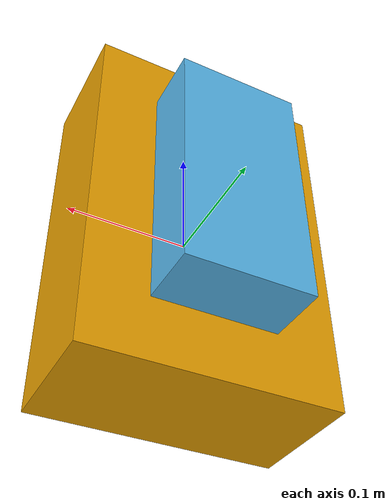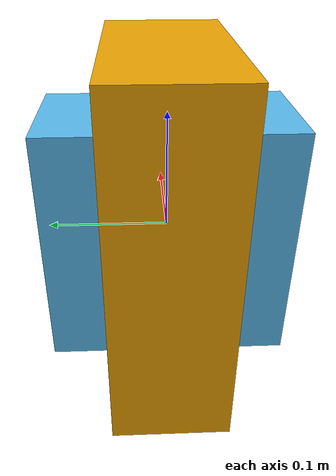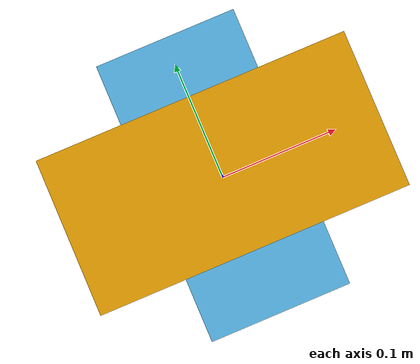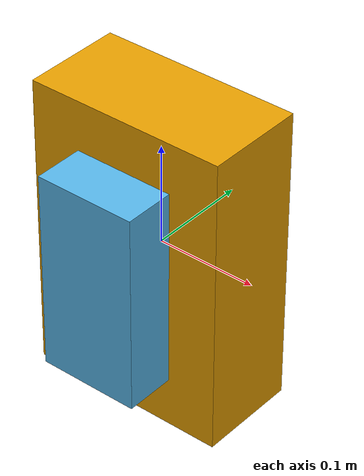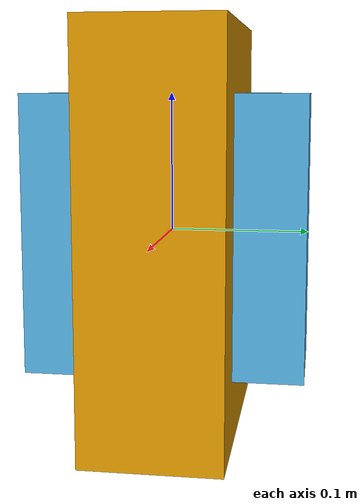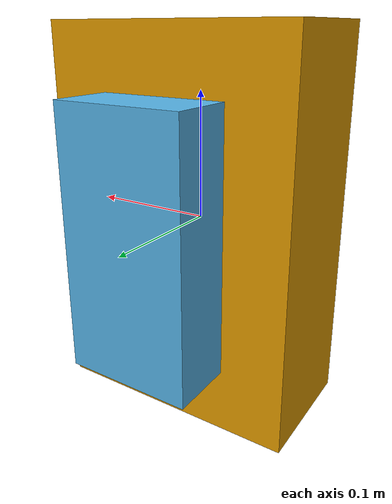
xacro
<?xml version="1.0" encoding="utf-8" ?>
<robot name="box" xmlns:xacro="http://www.ros.org/wiki/xacro">
    <!-- macro define, param
     -->
    <xacro:property name="length" value="2"></xacro:property>
    <xacro:property name="width" value="2"></xacro:property>
    <xacro:property name="height" value="2"></xacro:property>

    <xacro:macro name="LINK_TMP" params="name len width height">
        <link name="${name}">
            <visual>
                <geometry>
                    <box size="${len} ${width} ${height}"></box>
                </geometry>
            </visual>
        </link>
    </xacro:macro>

    <xacro:LINK_TMP name="base_link" len="0.2" width="0.1" height="0.3"/>
    <xacro:LINK_TMP name="link1" len="0.1" width="0.2" height="0.2"/>

    <joint name="joint1" type="fixed">
        <parent link="base_link"></parent>
        <child link="link1"></child>

    </joint>

</robot>
